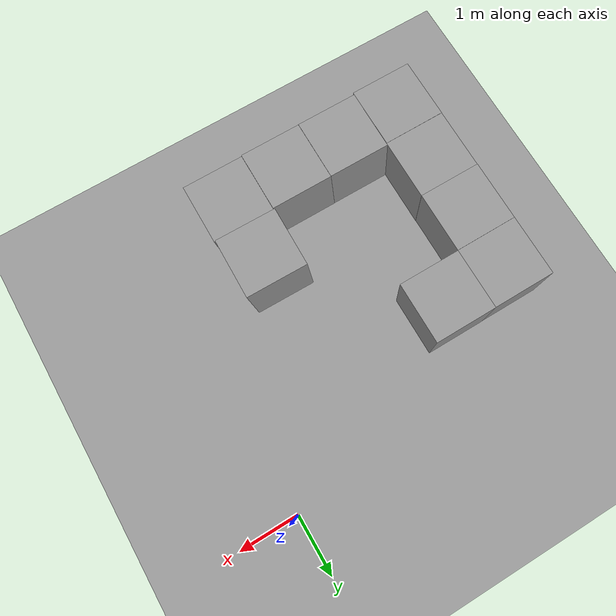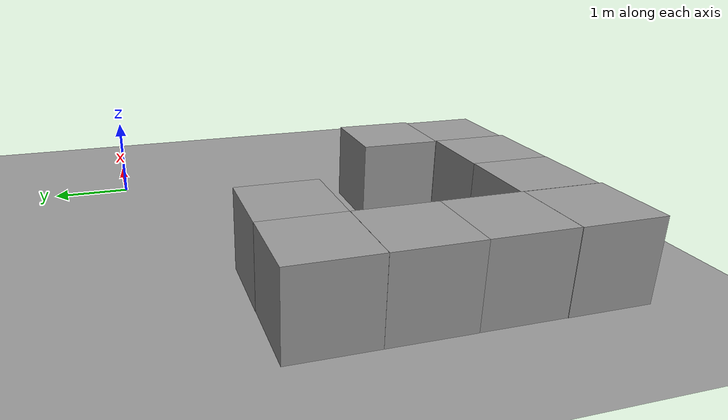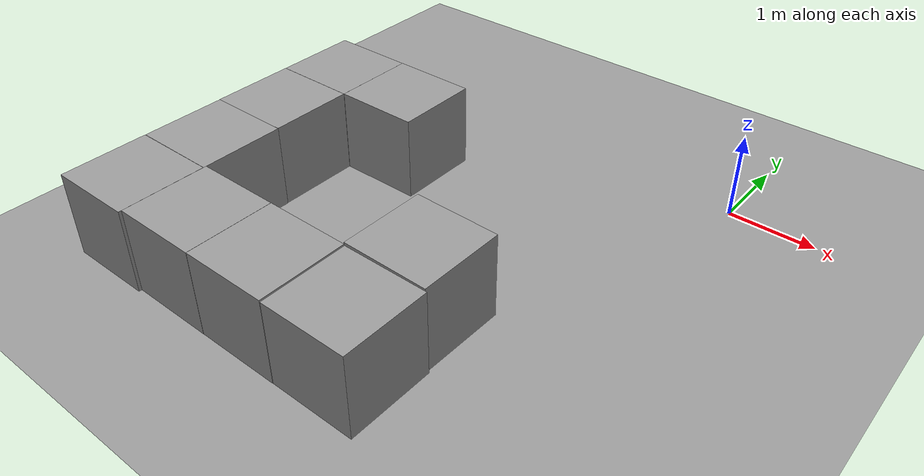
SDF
<sdf version="1.6">
 <world name="default">
  <light name="sun" type="directional">
   <pose>0 0 10 0 -0 0</pose>
   <diffuse>0.8 0.8 0.8 1</diffuse>
   <specular>0.2 0.2 0.2 1</specular>
   <attenuation>
    <range>1000</range>
    <constant>0.9</constant>
    <linear>0.01</linear>
    <quadratic>0.001</quadratic>
   </attenuation>
   <direction>0.5 0.1 -0.9</direction>
  </light>
  <scene><ambient>0.4 0.4 0.4 1</ambient><background>0.7 0.7 0.7 1</background><shadows>1</shadows></scene>
  <physics name="default_physics" default="0" type="ode">
   <max_step_size>0.01</max_step_size>
   <real_time_factor>1</real_time_factor>
   <real_time_update_rate>100</real_time_update_rate>
  </physics>
  <model name="ground_plane_0">
   <static>1</static>
   <link name="link">
    <collision name="collision">
     <geometry><plane><normal>0 0 1</normal><size>100 100</size></plane></geometry>
     <surface><friction><ode><mu>100</mu><mu2>50</mu2></ode></friction></surface>
    </collision>
    <visual name="visual">
     <cast_shadows>0</cast_shadows>
     <geometry><plane><normal>0 0 1</normal><size>100 100</size></plane></geometry>
     <material>
      <script><uri>file://media/materials/scripts/gazebo.material</uri><name>Gazebo/Grey</name></script>
     </material>
    </visual>
    <velocity_decay><linear>0</linear><angular>0</angular></velocity_decay>
   </link>
   <pose>0.497681 0 0 0 -0 0</pose>
  </model>
  <gravity>0 0 -9.8</gravity>
  <magnetic_field>6e-06 2.3e-05 -4.2e-05</magnetic_field>
  <atmosphere type="adiabatic"/>
  <spherical_coordinates>
   <surface_model>EARTH_WGS84</surface_model>
   <latitude_deg>0</latitude_deg>
   <longitude_deg>0</longitude_deg>
   <elevation>0</elevation>
   <heading_deg>0</heading_deg>
  </spherical_coordinates>
  <model name="unit_box_0">
   <pose>-1.5076 -3.5215 0.5 0 0 -0.011967</pose>
   <link name="link">
    <inertial>
     <mass>1</mass>
     <inertia>
      <ixx>0.166667</ixx>
      <ixy>0</ixy>
      <ixz>0</ixz>
      <iyy>0.166667</iyy>
      <iyz>0</iyz>
      <izz>0.166667</izz>
     </inertia>
    </inertial>
    <collision name="collision"><geometry><box><size>1 1 1</size></box></geometry></collision>
    <visual name="visual">
     <geometry><box><size>1 1 1</size></box></geometry>
     <material>
      <script><name>Gazebo/Grey</name><uri>file://media/materials/scripts/gazebo.material</uri></script>
     </material>
    </visual>
   </link>
  </model>
  <model name="unit_box_1">
   <pose>-1.49389 -4.5267 0.476479 -9e-06 8e-06 -0.001624</pose>
   <link name="link">
    <inertial>
     <mass>1</mass>
     <inertia>
      <ixx>0.166667</ixx>
      <ixy>0</ixy>
      <ixz>0</ixz>
      <iyy>0.166667</iyy>
      <iyz>0</iyz>
      <izz>0.166667</izz>
     </inertia>
    </inertial>
    <collision name="collision"><geometry><box><size>1 1 1</size></box></geometry></collision>
    <visual name="visual">
     <geometry><box><size>1 1 1</size></box></geometry>
     <material>
      <script><name>Gazebo/Grey</name><uri>file://media/materials/scripts/gazebo.material</uri></script>
     </material>
    </visual>
   </link>
  </model>
  <model name="unit_box_2">
   <pose>-2.49415 -4.53024 0.498046 -2e-06 -3e-06 -0.001128</pose>
   <link name="link">
    <inertial>
     <mass>1</mass>
     <inertia>
      <ixx>0.166667</ixx>
      <ixy>0</ixy>
      <ixz>0</ixz>
      <iyy>0.166667</iyy>
      <iyz>0</iyz>
      <izz>0.166667</izz>
     </inertia>
    </inertial>
    <collision name="collision"><geometry><box><size>1 1 1</size></box></geometry></collision>
    <visual name="visual">
     <geometry><box><size>1 1 1</size></box></geometry>
     <material>
      <script><name>Gazebo/Grey</name><uri>file://media/materials/scripts/gazebo.material</uri></script>
     </material>
    </visual>
   </link>
  </model>
  <model name="unit_box_3">
   <pose>-3.49454 -4.53088 0.499798 0.000404 1e-06 -0.001867</pose>
   <link name="link">
    <inertial>
     <mass>1</mass>
     <inertia>
      <ixx>0.166667</ixx>
      <ixy>0</ixy>
      <ixz>0</ixz>
      <iyy>0.166667</iyy>
      <iyz>0</iyz>
      <izz>0.166667</izz>
     </inertia>
    </inertial>
    <collision name="collision"><geometry><box><size>1 1 1</size></box></geometry></collision>
    <visual name="visual">
     <geometry><box><size>1 1 1</size></box></geometry>
     <material>
      <script><name>Gazebo/Grey</name><uri>file://media/materials/scripts/gazebo.material</uri></script>
     </material>
    </visual>
   </link>
  </model>
  <model name="unit_box_4">
   <pose>-4.4973 -4.56425 0.49912 0 -0 0.001384</pose>
   <link name="link">
    <inertial>
     <mass>1</mass>
     <inertia>
      <ixx>0.166667</ixx>
      <ixy>0</ixy>
      <ixz>0</ixz>
      <iyy>0.166667</iyy>
      <iyz>0</iyz>
      <izz>0.166667</izz>
     </inertia>
    </inertial>
    <collision name="collision"><geometry><box><size>1 1 1</size></box></geometry></collision>
    <visual name="visual">
     <geometry><box><size>1 1 1</size></box></geometry>
     <material>
      <script><name>Gazebo/Grey</name><uri>file://media/materials/scripts/gazebo.material</uri></script>
     </material>
    </visual>
   </link>
  </model>
  <model name="unit_box_5">
   <pose>-4.49399 -3.56252 0.499794 -0.000411 -0 -0.00061</pose>
   <link name="link">
    <inertial>
     <mass>1</mass>
     <inertia>
      <ixx>0.166667</ixx>
      <ixy>0</ixy>
      <ixz>0</ixz>
      <iyy>0.166667</iyy>
      <iyz>0</iyz>
      <izz>0.166667</izz>
     </inertia>
    </inertial>
    <collision name="collision"><geometry><box><size>1 1 1</size></box></geometry></collision>
    <visual name="visual">
     <geometry><box><size>1 1 1</size></box></geometry>
     <material>
      <script><name>Gazebo/Grey</name><uri>file://media/materials/scripts/gazebo.material</uri></script>
     </material>
    </visual>
   </link>
  </model>
  <model name="unit_box_6">
   <pose>-4.497 -2.56272 0.5 0 0 -0.00061</pose>
   <link name="link">
    <inertial>
     <mass>1</mass>
     <inertia>
      <ixx>0.166667</ixx>
      <ixy>0</ixy>
      <ixz>0</ixz>
      <iyy>0.166667</iyy>
      <iyz>0</iyz>
      <izz>0.166667</izz>
     </inertia>
    </inertial>
    <collision name="collision"><geometry><box><size>1 1 1</size></box></geometry></collision>
    <visual name="visual">
     <geometry><box><size>1 1 1</size></box></geometry>
     <material>
      <script><name>Gazebo/Grey</name><uri>file://media/materials/scripts/gazebo.material</uri></script>
     </material>
    </visual>
   </link>
  </model>
  <model name="unit_box_7">
   <pose>-4.49635 -1.56196 0.49967 -0.00066 0 -0.000176</pose>
   <link name="link">
    <inertial>
     <mass>1</mass>
     <inertia>
      <ixx>0.166667</ixx>
      <ixy>0</ixy>
      <ixz>0</ixz>
      <iyy>0.166667</iyy>
      <iyz>0</iyz>
      <izz>0.166667</izz>
     </inertia>
    </inertial>
    <collision name="collision"><geometry><box><size>1 1 1</size></box></geometry></collision>
    <visual name="visual">
     <geometry><box><size>1 1 1</size></box></geometry>
     <material>
      <script><name>Gazebo/Grey</name><uri>file://media/materials/scripts/gazebo.material</uri></script>
     </material>
    </visual>
   </link>
  </model>
  <model name="unit_box_8">
   <pose>-3.49632 -1.55964 0.49912 0 0 -0.000221</pose>
   <link name="link">
    <inertial>
     <mass>1</mass>
     <inertia>
      <ixx>0.166667</ixx>
      <ixy>0</ixy>
      <ixz>0</ixz>
      <iyy>0.166667</iyy>
      <iyz>0</iyz>
      <izz>0.166667</izz>
     </inertia>
    </inertial>
    <collision name="collision"><geometry><box><size>1 1 1</size></box></geometry></collision>
    <visual name="visual">
     <geometry><box><size>1 1 1</size></box></geometry>
     <material>
      <script><name>Gazebo/Grey</name><uri>file://media/materials/scripts/gazebo.material</uri></script>
     </material>
    </visual>
   </link>
  </model>
 </world>
</sdf>
